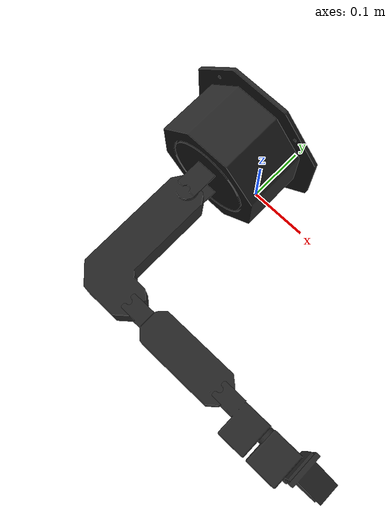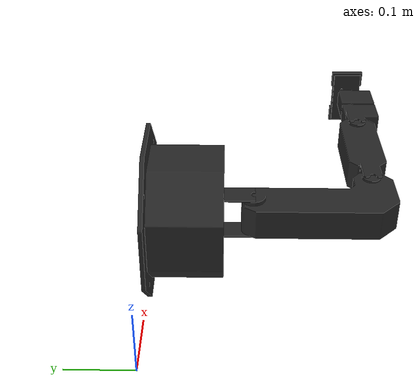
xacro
<?xml version="1.0" ?>
<robot name="widowx_arm" xmlns:xacro="http://ros.org/wiki/xacro">
	<xacro:include filename="$(find widowx_arm_description)/urdf/widowx.urdf.xacro"/>

	<link name="origin_point">
		<visual>
			<origin xyz="0 0 0" rpy="0 0 0"/>
			<geometry>
				<box size="0.001 0.001 0.001"/>
			</geometry>
		</visual>
	</link>

	<link name="base_footprint">
		<visual>
			<origin xyz="0 0 0" rpy="0 0 0"/>
			<geometry>
				<box size="0.001 0.001 0.001" />
			</geometry>
		</visual>
	</link>

	<joint name="fake_torso_joint" type="fixed">
		<parent link="origin_point"/>
		<child link="base_footprint"/>
		<origin xyz="0.0 -0.027325 0.26035" rpy="1.5707963268 0.0 0.0"/>
	</joint>

	<xacro:widowx_arm parent="base_footprint" prefix="">
		<origin xyz="0.0 0.0 0.0" rpy="0.0 0.0 0.0"/>
	</xacro:widowx_arm>
</robot>

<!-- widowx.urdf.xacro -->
<robot xmlns:xacro="http://ros.org/wiki/xacro">
   <xacro:property name="M_SCALE" value="0.001"/>
   <xacro:property name="M_PI" value="3.14159"/>

   <xacro:include filename="widowx_arm_description/urdf/common_materials.xacro" />

   <!--link name="plate_top_link"/-->

   <xacro:macro name="widowx_arm" params="parent prefix *origin">
      <!-- links -->
      <link name="${prefix}arm_base_link">
         <visual>
            <origin xyz="0 0 0" rpy="0 0 0" />
            <geometry>
               <mesh filename="package://widowx_arm_description/meshes/base_link.stl"/>
            </geometry>
            <xacro:material_black />
	     </visual>
         <collision>
            <origin xyz="0 0 0" rpy="0 0 0" />
            <geometry>
               <mesh filename="package://widowx_arm_description/meshes/base_link.stl"/>
            </geometry>
         </collision>
         <inertial>
            <origin xyz="0 0 0" rpy="0 0 0" />
            <mass value="1" />
            <inertia ixx="1.0" ixy="0.0" ixz="0.0" iyy="1.0" iyz="0.0" izz="1.0" />
         </inertial>
      </link>
      <link name="${prefix}shoulder_link">
         <visual>
            <origin xyz="0 0 0" rpy="0 0 0" />
            <geometry>
               <mesh filename="package://widowx_arm_description/meshes/shoulder_link.stl" />
            </geometry>
            <xacro:material_black />
         </visual>
         <collision>
            <origin xyz="0 0 0" rpy="0 0 0" />
            <geometry>
               <mesh filename="package://widowx_arm_description/meshes/shoulder_link.stl"/>
            </geometry>
         </collision>
         <inertial>
            <origin xyz="0 0 0" rpy="0 0 0" />
            <mass value="1" />
            <inertia ixx="1.0" ixy="0.0" ixz="0.0" iyy="1.0" iyz="0.0" izz="1.0" />
         </inertial>
      </link>
      <link name="${prefix}biceps_link">
         <visual>
            <origin xyz="0 0 0" rpy="0 0 0" />
            <geometry>
               <mesh filename="package://widowx_arm_description/meshes/biceps_link.new.stl" />
            </geometry>
            <xacro:material_black />
         </visual>
         <collision>
            <origin xyz="0 0 0" rpy="0 0 0" />
            <geometry>
               <mesh filename="package://widowx_arm_description/meshes/biceps_link.new.stl" />
            </geometry>
         </collision>
         <inertial>
            <origin xyz="0 0 0" rpy="0 0 0" />
            <mass value="1" />
            <inertia ixx="1.0" ixy="0.0" ixz="0.0" iyy="1.0" iyz="0.0" izz="1.0" />
         </inertial>
      </link>
      <link name="${prefix}forearm_link">
         <visual>
            <origin xyz="0 0 0" rpy="0 0 0" />
            <geometry>
               <mesh filename="package://widowx_arm_description/meshes/forearm_link.new.stl"/>
            </geometry>
           <xacro:material_black />
         </visual>
         <collision>
            <origin xyz="0 0 0" rpy="0 0 0" />
            <geometry>
               <mesh filename="package://widowx_arm_description/meshes/forearm_link.new.stl"/>
            </geometry>
         </collision>
         <inertial>
            <origin xyz="0 0 0" rpy="0 0 0" />
            <mass value="1" />
            <inertia ixx="1.0" ixy="0.0" ixz="0.0" iyy="1.0" iyz="0.0" izz="1.0"/>
         </inertial>
      </link>
      <link name="${prefix}wrist_1_link">
         <visual>
            <origin xyz="0 0 0" rpy="0 0 0" />
            <geometry>
               <mesh filename="package://widowx_arm_description/meshes/wrist_1_link.stl"/>
            </geometry>
            <xacro:material_black />
         </visual>
         <collision>
            <origin xyz="0 0 0" rpy="0 0 0" />
            <geometry>
               <mesh filename="package://widowx_arm_description/meshes/wrist_1_link.stl"/>
            </geometry>
         </collision>
         <inertial>
            <origin xyz="0 0 0" rpy="0 0 0" />
            <mass value="1" />
            <inertia ixx="1.0" ixy="0.0" ixz="0.0" iyy="1.0" iyz="0.0" izz="1.0" />
         </inertial>
      </link>
      <link name="${prefix}wrist_2_link">
         <visual>
            <origin xyz="0 0 0" rpy="0 0 0" />
            <geometry>
               <mesh filename="package://widowx_arm_description/meshes/wrist_2_link.new.stl"/>
            </geometry>
            <xacro:material_black />
         </visual>
         <collision>
            <origin xyz="0 0 0" rpy="0 0 0" />
            <geometry>
               <mesh filename="package://widowx_arm_description/meshes/wrist_2_link.new.stl"/>
            </geometry>
         </collision>
         <inertial>
            <origin xyz="0 0 0" rpy="0 0 0" />
            <mass value="1" />
            <inertia ixx="1.0" ixy="0.0" ixz="0.0" iyy="1.0" iyz="0.0" izz="1.0" />
         </inertial>
      </link>
      <!-- joints -->
      <joint name="${prefix}arm_base_joint" type="fixed">
         <xacro:insert_block name="origin" />
         <parent link="${parent}" />
         <child link="${prefix}arm_base_link"/>
      </joint>
      <joint name="${prefix}joint_1" type="revolute">
         <origin xyz="0 0 ${M_SCALE*125}" rpy="0 0 0" />
         <parent link="${prefix}arm_base_link" />
         <child link="${prefix}shoulder_link" />
         <axis xyz="0 0 1" />
         <limit lower="-2.617" upper="2.617" effort="6" velocity="0.785" />
      </joint>
      <joint name="${prefix}joint_2" type="revolute">
         <!--origin xyz="0.04825 0 0.14203" rpy="0 0 0" /-->
         <origin xyz="0 0 0" rpy="0 0 0" />
         <parent link="${prefix}shoulder_link" />
         <child link="${prefix}biceps_link" />
         <axis xyz="0 1 0" />
         <limit lower="-1.571" upper="1.571" effort="6" velocity="1.571" />
      </joint>
      <joint name="${prefix}joint_3" type="revolute">
         <origin xyz="${M_SCALE*48.25} 0 ${M_SCALE*142.03}" rpy="0 ${M_PI/2.0} 0" />
         <parent link="${prefix}biceps_link" />
         <child link="${prefix}forearm_link" />
         <axis xyz="0 1 0" />
         <limit lower="-1.571" upper="1.571" effort="6" velocity="1.571" />
      </joint>
      <joint name="${prefix}joint_4" type="revolute">
         <origin xyz="0 0 ${M_SCALE*142.03}" rpy="0 0 0" />
         <parent link="${prefix}forearm_link" />
         <child link="${prefix}wrist_1_link" />
         <axis xyz="0 1 0" />
         <limit lower="-1.745" upper="1.745" effort="6" velocity="1.571" />
      </joint>
      <joint name="${prefix}joint_5" type="revolute">
         <origin xyz="0 0 ${M_SCALE*71.5}" rpy="0 0 0" />
         <parent link="${prefix}wrist_1_link" />
         <child link="${prefix}wrist_2_link" />
         <axis xyz="0 0 1" />
         <limit lower="-2.617" upper="2.617" effort="6" velocity="1.571" />
      </joint>

      <!-- gripper -->
  <xacro:include filename="$(find widowx_arm_description)/urdf/widowx_gripper.xacro"/>

   </xacro:macro>

  <transmission name="tran1">
    <type>transmission_interface/SimpleTransmission</type>
    <joint name="joint_1"/>
    <actuator name="motor1">
      <hardwareInterface>EffortJointInterface</hardwareInterface>
      <mechanicalReduction>1</mechanicalReduction>
    </actuator>
  </transmission>

 <transmission name="tran2">
    <type>transmission_interface/SimpleTransmission</type>
    <joint name="joint_2"/>
    <actuator name="motor2">
      <hardwareInterface>EffortJointInterface</hardwareInterface>
      <mechanicalReduction>1</mechanicalReduction>
    </actuator>
  </transmission>

 <transmission name="tran3">
    <type>transmission_interface/SimpleTransmission</type>
    <joint name="joint_3"/>
    <actuator name="motor3">
      <hardwareInterface>EffortJointInterface</hardwareInterface>
      <mechanicalReduction>1</mechanicalReduction>
    </actuator>
  </transmission>

 <transmission name="tran4">
    <type>transmission_interface/SimpleTransmission</type>
    <joint name="joint_4"/>
    <actuator name="motor4">
      <hardwareInterface>EffortJointInterface</hardwareInterface>
      <mechanicalReduction>1</mechanicalReduction>
    </actuator>
  </transmission>

 <transmission name="tran5">
    <type>transmission_interface/SimpleTransmission</type>
    <joint name="joint_6"/>
    <actuator name="motor5">
      <hardwareInterface>EffortJointInterface</hardwareInterface>
      <mechanicalReduction>1</mechanicalReduction>
    </actuator>
  </transmission>

 <transmission name="tran6">
    <type>transmission_interface/SimpleTransmission</type>
    <joint name="gripper_prismatic_joint_1"/>
    <actuator name="motor6">
      <hardwareInterface>EffortJointInterface</hardwareInterface>
      <mechanicalReduction>1</mechanicalReduction>
    </actuator>
  </transmission>

</robot>

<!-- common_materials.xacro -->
<robot xmlns:xacro="http://ros.org/wiki/xacro">
	<xacro:include filename="$(find widowx_arm_description)/urdf/common_colours.xacro"/>

	<xacro:macro name="material_yellow">
		<material name="">
			<color rgba="${color_yellow}"/>
		</material>
	</xacro:macro>

	<xacro:macro name="material_white">
		<material name="">
			<color rgba="${color_white}"/>
		</material>
	</xacro:macro>

	<xacro:macro name="material_black">
		<material name="">
			<color rgba="${color_black}"/>
		</material>
	</xacro:macro>

	<xacro:macro name="material_grey">
		<material name="">
			<color rgba="${color_grey}"/>
		</material>
	</xacro:macro>

	<xacro:macro name="material_greyish">
		<material name="">
			<color rgba="${color_greyish}"/>
		</material>
	</xacro:macro>

</robot>

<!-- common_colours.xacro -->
<robot xmlns:xacro="http://ros.org/wiki/xacro">

	<!-- RAL 1021 -->
	<xacro:property name="color_yellow"   value="0.96 0.76 0.13 1.0" />
	<!-- RAL 9002 -->
	<xacro:property name="color_white"    value="0.86 0.85 0.81 1.0" />
	<!-- RAL 7024 -->
	<xacro:property name="color_grey"     value="0.34 0.35 0.36 1.0" />

	<!-- approximations -->
	<xacro:property name="color_black"    value="0.15 0.15 0.15 1.0" />
	<xacro:property name="color_greyish"  value="0.75 0.75 0.75 1.0" />

</robot>

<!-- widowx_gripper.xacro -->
<robot xmlns:xacro="http://ros.org/wiki/xacro">
   <link name="${prefix}gripper_rail_link">
      <visual>
         <origin xyz="0 0 0" rpy="0 0 1.57" />
         <geometry>
            <mesh filename="package://widowx_arm_description/meshes/gripper_rail_link.stl"/>
         </geometry>
         <xacro:material_black />
      </visual>
      <collision>
         <origin xyz="0 0 0" rpy="0 0 1.57" />
         <geometry>
            <mesh filename="package://widowx_arm_description/meshes/gripper_rail_link.stl"/>
         </geometry>
      </collision>
      <inertial>
         <origin xyz="0 0 0" rpy="0 0 0" />
         <mass value="1" />
         <inertia ixx="1.0" ixy="0.0" ixz="0.0" iyy="1.0" iyz="0.0" izz="1.0" />
      </inertial>
   </link>
   <link name="${prefix}gripper_1_link">
      <visual>
         <origin xyz="0 -0.0007 0" rpy="0 0 1.57" />
         <geometry>
            <mesh filename="package://widowx_arm_description/meshes/gripper_hand_fixed_link.stl"/>
         </geometry>
         <xacro:material_black />
      </visual>
      <collision>
         <origin xyz="0 -0.0007 0" rpy="0 0 1.57" />
         <geometry>
            <mesh filename="package://widowx_arm_description/meshes/gripper_hand_fixed_link.stl"/>
         </geometry>
      </collision>
      <inertial>
         <origin xyz="0 0 0" rpy="0 0 0" />
         <mass value="1" />
         <inertia ixx="1.0" ixy="0.0" ixz="0.0" iyy="1.0" iyz="0.0" izz="1.0" />
      </inertial>
   </link>
   <link name="${prefix}gripper_2_link">
      <visual>
         <origin xyz="0 0.0007 0" rpy="0 0 -1.57" />
         <geometry>
            <mesh filename="package://widowx_arm_description/meshes/gripper_hand_fixed_link.stl"/>
         </geometry>
         <xacro:material_black />
      </visual>
      <collision>
         <origin xyz="0 0.0007 0" rpy="0 0 -1.57" />
         <geometry>
            <mesh filename="package://widowx_arm_description/meshes/gripper_hand_fixed_link.stl"/>
         </geometry>
      </collision>
      <inertial>
         <origin xyz="0 0 0" rpy="0 0 0" />
         <mass value="1" />
         <inertia ixx="1.0" ixy="0.0" ixz="0.0" iyy="1.0" iyz="0.0" izz="1.0" />
      </inertial>
   </link>
   <joint name="${prefix}joint_6" type="fixed">
      <origin xyz = "0 0 ${M_SCALE*43}" rpy="0 0 0" />
      <parent link="${prefix}wrist_2_link" />
      <child link="${prefix}gripper_rail_link" />
      <axis xyz="0 0 1" />
   </joint>
   <joint name="${prefix}gripper_joint" type="prismatic">
      <origin xyz="0 0 0" rpy="0 0 0" />
      <parent link="${prefix}gripper_rail_link" />
      <child link="${prefix}gripper_1_link" />
      <axis xyz="0 -1 0" />
      <limit lower="0.002" upper="0.031" effort="0" velocity="0.5" />
   </joint>
   <joint name="${prefix}gripper_prismatic_joint_2" type="prismatic">
      <origin xyz="0 0 0" rpy="0 0 0" />
      <parent link="${prefix}gripper_rail_link" />
      <child link="${prefix}gripper_2_link" />
      <mimic joint="${prefix}gripper_joint" />
      <axis xyz="0 1 0" />
      <limit lower="0.002" upper="0.031" effort="0" velocity="0.5" />
   </joint>
</robot>
